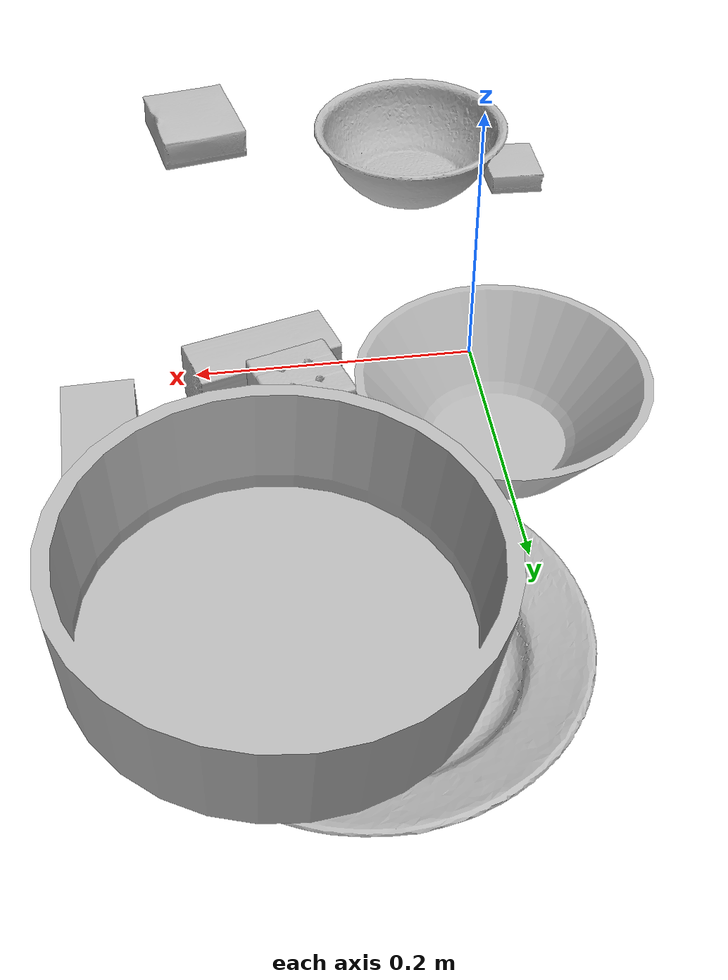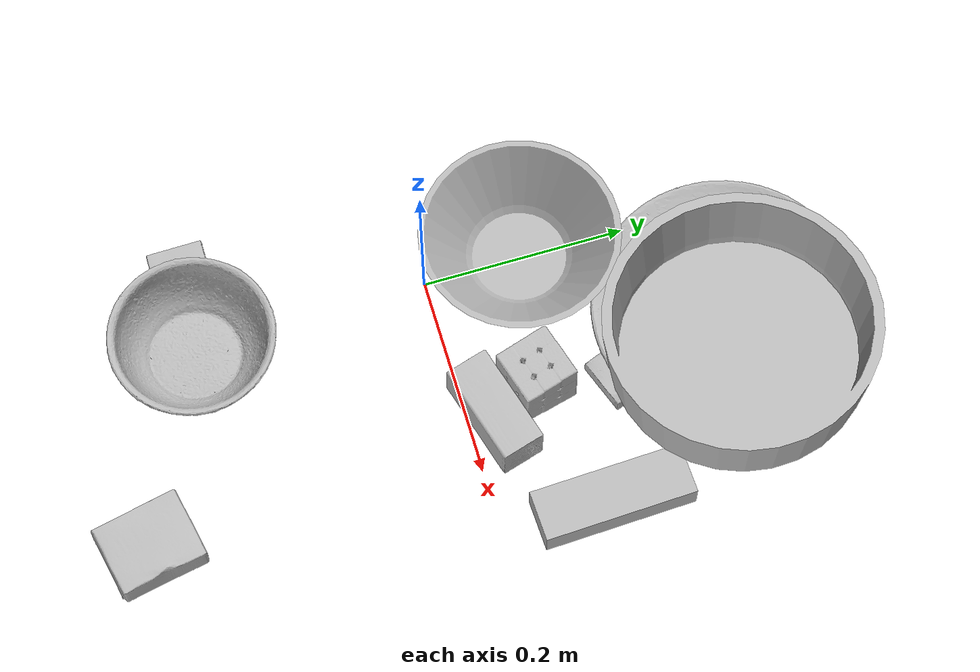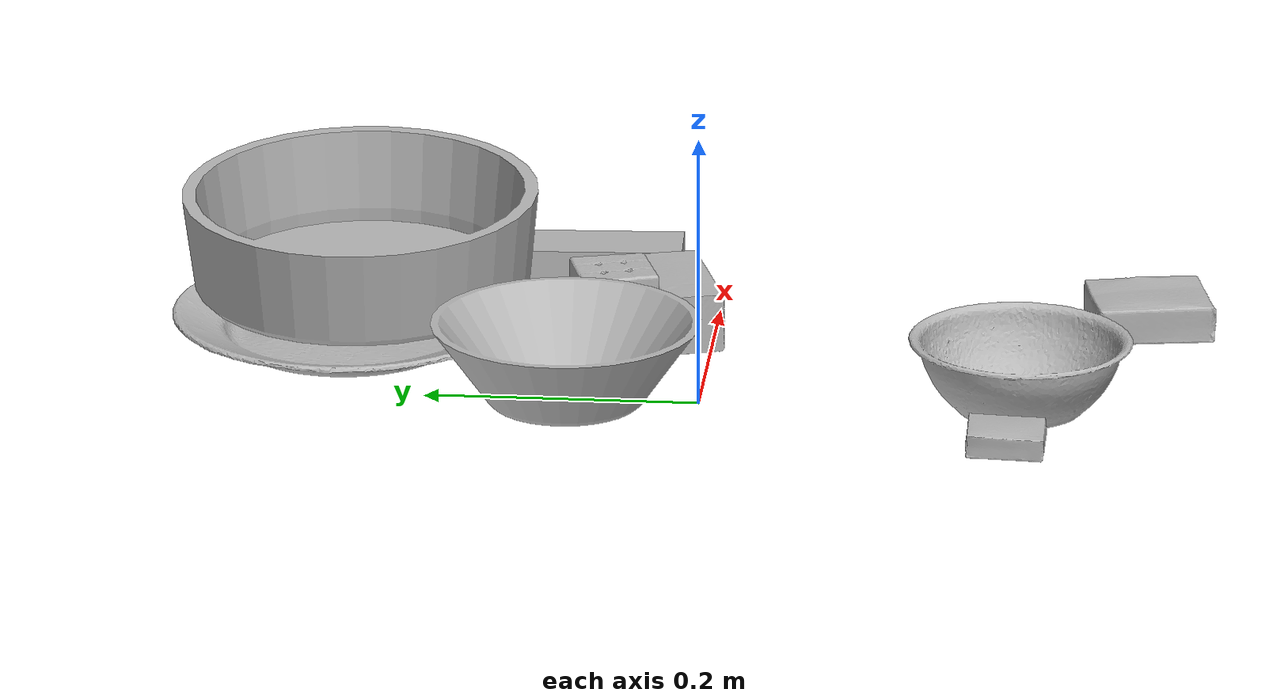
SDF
<sdf version="1.4">
  <world name="default">
    <light name="light1" type="point">
      <pose>0 0 1 0 0 0</pose>
      <diffuse>3 3 3 1</diffuse>
      <specular>3 3 3 1</specular>
    </light>
    <light name="light2" type="point">
      <pose>0 0.5 2 0 0 0</pose>
      <diffuse>1 1 1 1</diffuse>
      <specular>1 1 1 1</specular>
    </light>
    <light name="light3" type="point">
      <pose>0 0.5 2 0 0 0</pose>
      <diffuse>3 3 3 1</diffuse>
      <specular>3 3 3 1</specular>
    </light>
    <scene>
      <ambient>0.7 0.7 0.7</ambient>
    </scene>
    <model name="box1">
      <link name="link_box1">
        <collision name="default">
          <geometry>
            <mesh>
              <uri>model://rubiks_cube/collision_meshes/collision.obj</uri>
              <scale>1.0 1.0 1.0</scale>
            </mesh>
          </geometry>
          <surface>
            <friction>
              <ode>
                <mu>0.5</mu>
                <mu2>0.5</mu2>
              </ode>
            </friction>
          <contact>
        <ode>
            <max_vel>0</max_vel>
            <min_depth>0.0001</min_depth>
            <kp>1e8</kp>
        </ode>
    </contact></surface>
        </collision>
        <visual name="default">
          <geometry>
            <mesh>
              <uri>model://rubiks_cube/visual_meshes/visual.dae</uri>
              <scale>1.0 1.0 1.0</scale>
            </mesh>
          </geometry>
        </visual>
        <inertial>
          <mass>0.14937607944011688</mass>
          <pose>2.6721041649580002e-05 5.256967051536776e-05 -7.264316082000732e-06 -0.054671979216720346 -0.0981390543553378 -0.03445400726577695</pose>
          <inertia>
            <ixx>8.254031e-05</ixx>
            <iyy>8.2155384e-05</iyy>
            <izz>8.32243e-05</izz>
            <ixy>0</ixy>
            <ixz>0</ixz>
            <iyz>0</iyz>
          </inertia>
        </inertial>
      </link>
      <pose>0.13042211532592773 0.07361946254968643 0.028678998351097107 -1.800754847911046e-06 4.076266784346938e-08 -1.2879655911498966</pose>
    </model>
    <model name="box11">
      <link name="link_box11">
        <collision name="default">
          <geometry>
            <mesh>
              <uri>model://gelatin_box/collision_meshes/collision.obj</uri>
              <scale>1.0 1.0 1.0</scale>
            </mesh>
          </geometry>
          <surface>
            <friction>
              <ode>
                <mu>0.5</mu>
                <mu2>0.5</mu2>
              </ode>
            </friction>
          <contact>
        <ode>
            <max_vel>0</max_vel>
            <min_depth>0.0001</min_depth>
            <kp>1e8</kp>
        </ode>
    </contact></surface>
        </collision>
        <visual name="default">
          <geometry>
            <mesh>
              <uri>model://gelatin_box/visual_meshes/visual.dae</uri>
              <scale>1.0 1.0 1.0</scale>
            </mesh>
          </geometry>
        </visual>
        <inertial>
          <mass>0.1927502304315567</mass>
          <pose>0.0004319618456065655 0.00011156871914863586 -0.00036403213744051754 -0.0010503718519204429 -0.00475581822657324 0.016440557608202722</pose>
          <inertia>
            <ixx>0.00013606594</ixx>
            <iyy>9.7191194e-05</iyy>
            <izz>0.00020712269</izz>
            <ixy>0</ixy>
            <ixz>0</ixz>
            <iyz>0</iyz>
          </inertia>
        </inertial>
      </link>
      <pose>0.1865117996931076 -0.3209352493286133 0.01516831386834383 0.005597460020279156 -0.007304586531580295 0.18996735507759457</pose>
    </model>
    <model name="box2">
      <link name="link_box2">
        <collision name="default">
          <geometry>
            <mesh>
              <uri>model://jenga/collision_meshes/collision.obj</uri>
              <scale>1.0 1.0 1.0</scale>
            </mesh>
          </geometry>
          <surface>
            <friction>
              <ode>
                <mu>0.5</mu>
                <mu2>0.5</mu2>
              </ode>
            </friction>
          <contact>
        <ode>
            <max_vel>0</max_vel>
            <min_depth>0.0001</min_depth>
            <kp>1e8</kp>
        </ode>
    </contact></surface>
        </collision>
        <visual name="default">
          <geometry>
            <mesh>
              <uri>model://jenga/visual_meshes/visual.dae</uri>
              <scale>1.0 1.0 1.0</scale>
            </mesh>
          </geometry>
        </visual>
        <inertial>
          <mass>0.17753760516643524</mass>
          <pose>-2.5028555228345795e-07 -0.00010250010382151231 -4.0923401684267446e-05 0.0 -7.342155186052628e-07 0.0</pose>
          <inertia>
            <ixx>4.912897e-05</ixx>
            <iyy>0.00033289654</iyy>
            <izz>0.00035539534</izz>
            <ixy>0</ixy>
            <ixz>0</ixz>
            <iyz>0</iyz>
          </inertia>
        </inertial>
      </link>
      <pose>0.26420918107032776 0.10898319631814957 0.014999902807176113 9.235413618321114e-06 1.8055982937422871e-06 -1.530875219997792</pose>
    </model>
    <model name="box21">
      <link name="link_box21">
        <collision name="default">
          <geometry>
            <mesh>
              <uri>model://cracker_box/collision_meshes/collision.obj</uri>
              <scale>0.25 0.25 0.25</scale>
            </mesh>
          </geometry>
          <surface>
            <friction>
              <ode>
                <mu>0.5</mu>
                <mu2>0.5</mu2>
              </ode>
            </friction>
          <contact>
        <ode>
            <max_vel>0</max_vel>
            <min_depth>0.0001</min_depth>
            <kp>1e8</kp>
        </ode>
    </contact></surface>
        </collision>
        <visual name="default">
          <geometry>
            <mesh>
              <uri>model://cracker_box/visual_meshes/visual.dae</uri>
              <scale>0.25 0.25 0.25</scale>
            </mesh>
          </geometry>
        </visual>
        <inertial>
          <mass>0.032025858759880066</mass>
          <pose>0.00023660347505938262 6.358561950037256e-05 -0.0004257383698131889 -0.0003162079452709603 -0.01110648960005095 0.0025467945380896087</pose>
          <inertia>
            <ixx>5.091218e-06</ixx>
            <iyy>8.406602e-06</iyy>
            <izz>1.1996991e-05</izz>
            <ixy>0</ixy>
            <ixz>0</ixz>
            <iyz>0</iyz>
          </inertia>
        </inertial>
      </link>
      <pose>0.14620645344257355 0.1507536768913269 0.00909675657749176 -0.013926292502652761 -0.004977554634635843 -2.7928587596980754</pose>
    </model>
    <model name="box3">
      <link name="link_box3">
        <collision name="default">
          <geometry>
            <mesh>
              <uri>model://wood_block/collision_meshes/collision.obj</uri>
              <scale>0.5 0.5 0.5</scale>
            </mesh>
          </geometry>
          <surface>
            <friction>
              <ode>
                <mu>0.5</mu>
                <mu2>0.5</mu2>
              </ode>
            </friction>
          <contact>
        <ode>
            <max_vel>0</max_vel>
            <min_depth>0.0001</min_depth>
            <kp>1e8</kp>
        </ode>
    </contact></surface>
        </collision>
        <visual name="default">
          <geometry>
            <mesh>
              <uri>model://wood_block/visual_meshes/visual.dae</uri>
              <scale>0.5 0.5 0.5</scale>
            </mesh>
          </geometry>
        </visual>
        <inertial>
          <mass>0.12936852872371674</mass>
          <pose>-2.9066577553749084e-06 -0.00028540470520965755 0.00013204290007706732 -0.052209755292171825 -0.0051926950820086835 -0.006861377939779924</pose>
          <inertia>
            <ixx>4.327867e-05</ixx>
            <iyy>0.00013671734</iyy>
            <izz>0.00013620593</izz>
            <ixy>0</ixy>
            <ixz>0</ixz>
            <iyz>0</iyz>
          </inertia>
        </inertial>
      </link>
      <pose>0.15334324538707733 0.025732675567269325 0.0226292684674263 -0.00520845180704636 0.005718733494578311 0.2827313472182775</pose>
    </model>
    <model name="box31">
      <link name="link_box31">
        <collision name="default">
          <geometry>
            <mesh>
              <uri>model://pudding_box/collision_meshes/collision.obj</uri>
              <scale>0.5 0.5 0.5</scale>
            </mesh>
          </geometry>
          <surface>
            <friction>
              <ode>
                <mu>0.5</mu>
                <mu2>0.5</mu2>
              </ode>
            </friction>
          <contact>
        <ode>
            <max_vel>0</max_vel>
            <min_depth>0.0001</min_depth>
            <kp>1e8</kp>
        </ode>
    </contact></surface>
        </collision>
        <visual name="default">
          <geometry>
            <mesh>
              <uri>model://pudding_box/visual_meshes/visual.dae</uri>
              <scale>0.5 0.5 0.5</scale>
            </mesh>
          </geometry>
        </visual>
        <inertial>
          <mass>0.02777985855937004</mass>
          <pose>0.00024474109522998333 0.00040339428232982755 -0.0002594413817860186 0.005213100847255284 -0.006603800106148706 0.020079825159203687</pose>
          <inertia>
            <ixx>7.850925e-06</ixx>
            <iyy>5.282159e-06</iyy>
            <izz>1.1593943e-05</izz>
            <ixy>0</ixy>
            <ixz>0</ixz>
            <iyz>0</iyz>
          </inertia>
        </inertial>
      </link>
      <pose>-0.07766487449407578 -0.22495360672473907 0.00986290443688631 0.02234955785566545 -0.011391160204459972 0.00016366604529499806</pose>
    </model>
    <model name="plate1">
      <link name="link_plate1">
        <collision name="default">
          <geometry>
            <mesh>
              <uri>model://plate/collision_meshes/collision.obj</uri>
              <scale>1.0 1.0 1.0</scale>
            </mesh>
          </geometry>
          <surface>
            <friction>
              <ode>
                <mu>0.5</mu>
                <mu2>0.5</mu2>
              </ode>
            </friction>
          <contact>
        <ode>
            <max_vel>0</max_vel>
            <min_depth>0.0001</min_depth>
            <kp>1e8</kp>
        </ode>
    </contact></surface>
        </collision>
        <visual name="default">
          <geometry>
            <mesh>
              <uri>model://plate/visual_meshes/visual.dae</uri>
              <scale>1.0 1.0 1.0</scale>
            </mesh>
          </geometry>
        </visual>
        <inertial>
          <mass>0.18243028223514557</mass>
          <pose>-0.0006044635083526373 0.00027825916185975075 -0.0010561967501416802 0.002218802985991306 -0.003225472580220492 0.4526054178664253</pose>
          <inertia>
            <ixx>0.00085341244</ixx>
            <iyy>0.00084524986</iyy>
            <izz>0.0016691468</izz>
            <ixy>0</ixy>
            <ixz>0</ixz>
            <iyz>0</iyz>
          </inertia>
        </inertial>
      </link>
      <pose>0.1117527112364769 0.2691407799720764 0.013732067309319973 -6.561667946208199e-05 -0.0001998111904059591 1.7343056819286025</pose>
    </model>
    <model name="bowl1">
      <link name="link_bowl1">
        <collision name="default">
          <geometry>
            <mesh>
              <uri>model://bowl_a/collision_meshes/collision.obj</uri>
              <scale>1.0 1.0 1.0</scale>
            </mesh>
          </geometry>
          <surface>
            <friction>
              <ode>
                <mu>0.5</mu>
                <mu2>0.5</mu2>
              </ode>
            </friction>
          <contact>
        <ode>
            <max_vel>0</max_vel>
            <min_depth>0.0001</min_depth>
            <kp>1e8</kp>
        </ode>
    </contact></surface>
        </collision>
        <visual name="default">
          <geometry>
            <mesh>
              <uri>model://bowl_a/visual_meshes/visual.dae</uri>
              <scale>1.0 1.0 1.0</scale>
            </mesh>
          </geometry>
        </visual>
        <inertial>
          <mass>0.33530884981155396</mass>
          <pose>0.00027867525932379067 4.7312179958680645e-05 -0.0013765293406322598 -0.0009805353119733814 -0.0010938238033148682 -0.19123781325276382</pose>
          <inertia>
            <ixx>0.0009546399</ixx>
            <iyy>0.0009605007</iyy>
            <izz>0.0016978635</izz>
            <ixy>0</ixy>
            <ixz>0</ixz>
            <iyz>0</iyz>
          </inertia>
        </inertial>
      </link>
      <pose>-0.0010251342318952084 0.09649796783924103 0.030383005738258362 1.1525312643422755e-08 1.8041239947148082e-08 -0.3876830330611114</pose>
    </model>
    <model name="plate2">
      <link name="link_plate2">
        <collision name="default">
          <geometry>
            <mesh>
              <uri>model://pan_tefal/collision_meshes/collision.obj</uri>
              <scale>1.0 1.0 1.0</scale>
            </mesh>
          </geometry>
          <surface>
            <friction>
              <ode>
                <mu>0.5</mu>
                <mu2>0.5</mu2>
              </ode>
            </friction>
          <contact>
        <ode>
            <max_vel>0</max_vel>
            <min_depth>0.0001</min_depth>
            <kp>1e8</kp>
        </ode>
    </contact></surface>
        </collision>
        <visual name="default">
          <geometry>
            <mesh>
              <uri>model://pan_tefal/visual_meshes/visual.dae</uri>
              <scale>1.0 1.0 1.0</scale>
            </mesh>
          </geometry>
        </visual>
        <inertial>
          <mass>1.3054066896438599</mass>
          <pose>-0.00018001779972109944 3.2791245757834986e-05 -0.008514936082065105 0.0008190347553724757 -0.0003301394488099971 -0.33186691456643896</pose>
          <inertia>
            <ixx>0.00901116</ixx>
            <iyy>0.009069256</iyy>
            <izz>0.016587809</izz>
            <ixy>0</ixy>
            <ixz>0</ixz>
            <iyz>0</iyz>
          </inertia>
        </inertial>
      </link>
      <pose>0.16104133427143097 0.26536136865615845 0.06435808539390564 -0.03803789501627568 0.033781868661781546 2.237111949107489</pose>
    </model>
    <model name="bowl2">
      <link name="link_bowl2">
        <collision name="default">
          <geometry>
            <mesh>
              <uri>model://bowl/collision_meshes/collision.obj</uri>
              <scale>1.0 1.0 1.0</scale>
            </mesh>
          </geometry>
          <surface>
            <friction>
              <ode>
                <mu>0.5</mu>
                <mu2>0.5</mu2>
              </ode>
            </friction>
          <contact>
        <ode>
            <max_vel>0</max_vel>
            <min_depth>0.0001</min_depth>
            <kp>1e8</kp>
        </ode>
    </contact></surface>
        </collision>
        <visual name="default">
          <geometry>
            <mesh>
              <uri>model://bowl/visual_meshes/visual.dae</uri>
              <scale>1.0 1.0 1.0</scale>
            </mesh>
          </geometry>
        </visual>
        <inertial>
          <mass>0.1096961572766304</mass>
          <pose>0.00020445209520403296 -0.0010302049340680242 -0.0008042648551054299 -0.015764066902751193 0.014546817497496476 0.7140421604823016</pose>
          <inertia>
            <ixx>0.00025198064</ixx>
            <iyy>0.00024635042</iyy>
            <izz>0.0004239182</izz>
            <ixy>0</ixy>
            <ixz>0</ixz>
            <iyz>0</iyz>
          </inertia>
        </inertial>
      </link>
      <pose>0.008173403330147266 -0.23127998411655426 0.027780000120401382 -1.5728080131685588e-08 1.6595827704911376e-08 -2.356151867094077</pose>
    </model>
  <physics type="ode">
      <max_contacts>50</max_contacts>
      <ode>
        <solver>
          <type>quick</type>
          <iters>75</iters>
        </solver>
        <constraints>
          <contact_max_correcting_vel>0</contact_max_correcting_vel>
          <contact_surface_layer>0</contact_surface_layer>
        </constraints>
      </ode>
    </physics></world>
</sdf>
